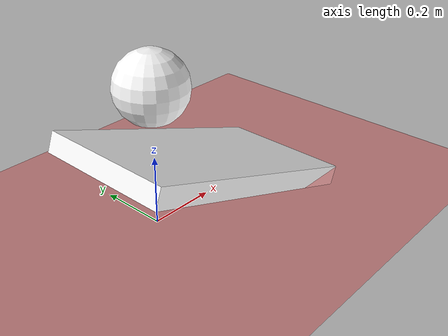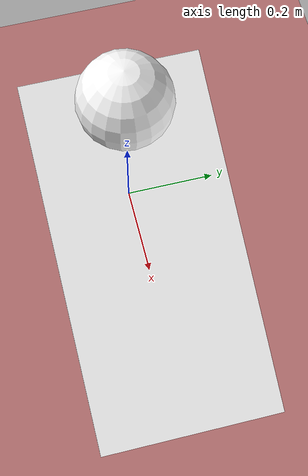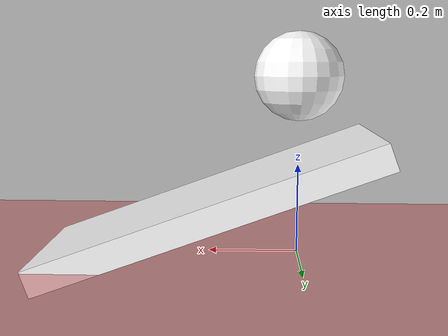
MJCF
<mujoco>
    <option gravity="9.81 0 -9.81" />
    <option density="1.204" viscosity="1.8e-5" integrator="implicit"/>
    <visual>
        <global elevation="-10"/>
    </visual>
    <asset>
        <material name="floor" texture="checks1" texrepeat="5 5" texuniform="true" />
        <texture name="checks1" builtin="checker" type="2d" width="256" height="256" rgb1="1 1 1" rgb2="0 0 0" />
        <material name="object" texture="checks2" texrepeat="5 5" texuniform="true" />
        <texture name="checks2" builtin="checker" type="2d" width="256" height="256" rgb1="1 0 0" rgb2="0 1 0" />
        <texture name="grid" type="2d" builtin="checker" width="512" height="512" rgb2="0 0 0" rgb1="1 1 1"/>
        <material name="grid" texture="grid" texrepeat="2 2" texuniform="true" reflectance=".6"/>
    </asset>
    <worldbody>
            <light diffuse=".5 .5 .5" pos="0 0 3" dir="0 0 -1"/>
        <geom type="plane" size="100 1 0.1" rgba=".9 0 0 1" material="floor" />

        <body pos="0 0 0.1">

            <geom name="ramp" type="box" size=".4 .2 .03" pos=".2 0 0.01" euler="0 20 0" rgba="1 1 1 1"/>

        </body>
        <body name="sphere"  pos="0 0 0.1">

            <joint type="free"/>
            <geom name="sphere2" type="sphere" size=".1" pos="0 0 .3" rgba="1 3 4 1" />
        </body>
    </worldbody>
</mujoco>
